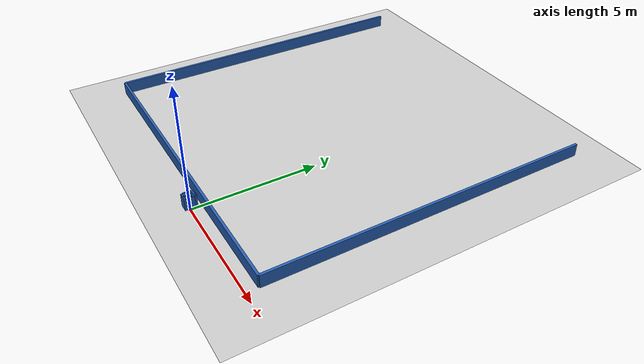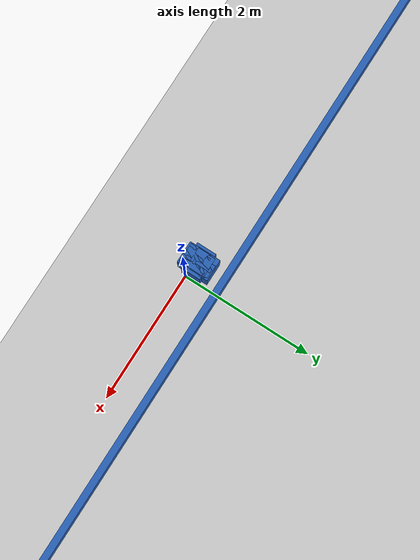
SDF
<?xml version="1.0" ?>
    <sdf version="1.5">
      <world name="default">
        <!-- A global light source -->
        <include>
          <uri>model://sun</uri>
        </include>
        <!-- A ground plane -->
        <include>
          <uri>model://ground_plane</uri>
        </include>

    <model name='libopen_space_final_T2B_61_88'>
      <static>1</static>
      <pose frame=''>-0.225000 0.075000 0.000000 0.000000 0.000000 0.000000</pose>
      <link name='link'>
        <inertial>
          <mass>1</mass>
          <inertia>
            <ixx>0.145833</ixx>
            <ixy>0</ixy>
            <ixz>0</ixz>
            <iyy>0.145833</iyy>
            <iyz>0</iyz>
            <izz>0.125</izz>
          </inertia>
        </inertial>
        <collision name='collision'>
          <geometry>
            <box>
              <size>0.14 0.12 1</size>
            </box>
          </geometry>
          <max_contacts>10</max_contacts>
          <surface>
            <contact>
              <ode/>
            </contact>
            <bounce/>
            <friction>
              <torsional>
                <ode/>
              </torsional>
              <ode/>
            </friction>
          </surface>
        </collision>
        <visual name='visual'>
          <geometry>
            <box>
              <size>0.14 0.12 1</size>
            </box>
          </geometry>
	    <material>
              <ambient>0.152000 0.379000 0.720000 1</ambient>
	      <diffuse>0.152000 0.379000 0.720000 1</diffuse>
          </material>
          <material>
            <script>
              <name>Gazebo/Grey</name>
              <uri>file://media/materials/scripts/gazebo.material</uri>
            </script>
          </material>
        </visual>
        <self_collide>0</self_collide>
        <kinematic>0</kinematic>
        <gravity>1</gravity>
      </link>
      <plugin name='libopen_space_final_T2B_61_88' filename='libopen_space_final_T2B_61_88.so'/>
    </model>

    <model name='libopen_space_final_T2B_83_61'>
      <static>1</static>
      <pose frame=''>-0.225000 0.075000 0.000000 0.000000 0.000000 0.000000</pose>
      <link name='link'>
        <inertial>
          <mass>1</mass>
          <inertia>
            <ixx>0.145833</ixx>
            <ixy>0</ixy>
            <ixz>0</ixz>
            <iyy>0.145833</iyy>
            <iyz>0</iyz>
            <izz>0.125</izz>
          </inertia>
        </inertial>
        <collision name='collision'>
          <geometry>
            <box>
              <size>0.10 0.36 1</size>
            </box>
          </geometry>
          <max_contacts>10</max_contacts>
          <surface>
            <contact>
              <ode/>
            </contact>
            <bounce/>
            <friction>
              <torsional>
                <ode/>
              </torsional>
              <ode/>
            </friction>
          </surface>
        </collision>
        <visual name='visual'>
          <geometry>
            <box>
              <size>0.10 0.36 1</size>
            </box>
          </geometry>
	    <material>
              <ambient>0.152000 0.379000 0.720000 1</ambient>
	      <diffuse>0.152000 0.379000 0.720000 1</diffuse>
          </material>
          <material>
            <script>
              <name>Gazebo/Grey</name>
              <uri>file://media/materials/scripts/gazebo.material</uri>
            </script>
          </material>
        </visual>
        <self_collide>0</self_collide>
        <kinematic>0</kinematic>
        <gravity>1</gravity>
      </link>
      <plugin name='libopen_space_final_T2B_83_61' filename='libopen_space_final_T2B_83_61.so'/>
    </model>

    <model name='libopen_space_final_T2B_90_15'>
      <static>1</static>
      <pose frame=''>-0.225000 0.075000 0.000000 0.000000 0.000000 0.000000</pose>
      <link name='link'>
        <inertial>
          <mass>1</mass>
          <inertia>
            <ixx>0.145833</ixx>
            <ixy>0</ixy>
            <ixz>0</ixz>
            <iyy>0.145833</iyy>
            <iyz>0</iyz>
            <izz>0.125</izz>
          </inertia>
        </inertial>
        <collision name='collision'>
          <geometry>
            <box>
              <size>0.23 0.24 1</size>
            </box>
          </geometry>
          <max_contacts>10</max_contacts>
          <surface>
            <contact>
              <ode/>
            </contact>
            <bounce/>
            <friction>
              <torsional>
                <ode/>
              </torsional>
              <ode/>
            </friction>
          </surface>
        </collision>
        <visual name='visual'>
          <geometry>
            <box>
              <size>0.23 0.24 1</size>
            </box>
          </geometry>
	    <material>
              <ambient>0.152000 0.379000 0.720000 1</ambient>
	      <diffuse>0.152000 0.379000 0.720000 1</diffuse>
          </material>
          <material>
            <script>
              <name>Gazebo/Grey</name>
              <uri>file://media/materials/scripts/gazebo.material</uri>
            </script>
          </material>
        </visual>
        <self_collide>0</self_collide>
        <kinematic>0</kinematic>
        <gravity>1</gravity>
      </link>
      <plugin name='libopen_space_final_T2B_90_15' filename='libopen_space_final_T2B_90_15.so'/>
    </model>

    <model name='libopen_space_final_T2B_134_32'>
      <static>1</static>
      <pose frame=''>-0.225000 0.075000 0.000000 0.000000 0.000000 0.000000</pose>
      <link name='link'>
        <inertial>
          <mass>1</mass>
          <inertia>
            <ixx>0.145833</ixx>
            <ixy>0</ixy>
            <ixz>0</ixz>
            <iyy>0.145833</iyy>
            <iyz>0</iyz>
            <izz>0.125</izz>
          </inertia>
        </inertial>
        <collision name='collision'>
          <geometry>
            <box>
              <size>0.33 0.48 1</size>
            </box>
          </geometry>
          <max_contacts>10</max_contacts>
          <surface>
            <contact>
              <ode/>
            </contact>
            <bounce/>
            <friction>
              <torsional>
                <ode/>
              </torsional>
              <ode/>
            </friction>
          </surface>
        </collision>
        <visual name='visual'>
          <geometry>
            <box>
              <size>0.33 0.48 1</size>
            </box>
          </geometry>
	    <material>
              <ambient>0.152000 0.379000 0.720000 1</ambient>
	      <diffuse>0.152000 0.379000 0.720000 1</diffuse>
          </material>
          <material>
            <script>
              <name>Gazebo/Grey</name>
              <uri>file://media/materials/scripts/gazebo.material</uri>
            </script>
          </material>
        </visual>
        <self_collide>0</self_collide>
        <kinematic>0</kinematic>
        <gravity>1</gravity>
      </link>
      <plugin name='libopen_space_final_T2B_134_32' filename='libopen_space_final_T2B_134_32.so'/>
    </model>

    <model name='libopen_space_final_T2B_92_34'>
      <static>1</static>
      <pose frame=''>-0.225000 0.075000 0.000000 0.000000 0.000000 0.000000</pose>
      <link name='link'>
        <inertial>
          <mass>1</mass>
          <inertia>
            <ixx>0.145833</ixx>
            <ixy>0</ixy>
            <ixz>0</ixz>
            <iyy>0.145833</iyy>
            <iyz>0</iyz>
            <izz>0.125</izz>
          </inertia>
        </inertial>
        <collision name='collision'>
          <geometry>
            <box>
              <size>0.22 0.43 1</size>
            </box>
          </geometry>
          <max_contacts>10</max_contacts>
          <surface>
            <contact>
              <ode/>
            </contact>
            <bounce/>
            <friction>
              <torsional>
                <ode/>
              </torsional>
              <ode/>
            </friction>
          </surface>
        </collision>
        <visual name='visual'>
          <geometry>
            <box>
              <size>0.22 0.43 1</size>
            </box>
          </geometry>
	    <material>
              <ambient>0.152000 0.379000 0.720000 1</ambient>
	      <diffuse>0.152000 0.379000 0.720000 1</diffuse>
          </material>
          <material>
            <script>
              <name>Gazebo/Grey</name>
              <uri>file://media/materials/scripts/gazebo.material</uri>
            </script>
          </material>
        </visual>
        <self_collide>0</self_collide>
        <kinematic>0</kinematic>
        <gravity>1</gravity>
      </link>
      <plugin name='libopen_space_final_T2B_92_34' filename='libopen_space_final_T2B_92_34.so'/>
    </model>

    <model name='libopen_space_final_T2B_56_75'>
      <static>1</static>
      <pose frame=''>-0.225000 0.075000 0.000000 0.000000 0.000000 0.000000</pose>
      <link name='link'>
        <inertial>
          <mass>1</mass>
          <inertia>
            <ixx>0.145833</ixx>
            <ixy>0</ixy>
            <ixz>0</ixz>
            <iyy>0.145833</iyy>
            <iyz>0</iyz>
            <izz>0.125</izz>
          </inertia>
        </inertial>
        <collision name='collision'>
          <geometry>
            <box>
              <size>0.11 0.42 1</size>
            </box>
          </geometry>
          <max_contacts>10</max_contacts>
          <surface>
            <contact>
              <ode/>
            </contact>
            <bounce/>
            <friction>
              <torsional>
                <ode/>
              </torsional>
              <ode/>
            </friction>
          </surface>
        </collision>
        <visual name='visual'>
          <geometry>
            <box>
              <size>0.11 0.42 1</size>
            </box>
          </geometry>
	    <material>
              <ambient>0.152000 0.379000 0.720000 1</ambient>
	      <diffuse>0.152000 0.379000 0.720000 1</diffuse>
          </material>
          <material>
            <script>
              <name>Gazebo/Grey</name>
              <uri>file://media/materials/scripts/gazebo.material</uri>
            </script>
          </material>
        </visual>
        <self_collide>0</self_collide>
        <kinematic>0</kinematic>
        <gravity>1</gravity>
      </link>
      <plugin name='libopen_space_final_T2B_56_75' filename='libopen_space_final_T2B_56_75.so'/>
    </model>

    <model name='libopen_space_final_T2B_73_39'>
      <static>1</static>
      <pose frame=''>-0.225000 0.075000 0.000000 0.000000 0.000000 0.000000</pose>
      <link name='link'>
        <inertial>
          <mass>1</mass>
          <inertia>
            <ixx>0.145833</ixx>
            <ixy>0</ixy>
            <ixz>0</ixz>
            <iyy>0.145833</iyy>
            <iyz>0</iyz>
            <izz>0.125</izz>
          </inertia>
        </inertial>
        <collision name='collision'>
          <geometry>
            <box>
              <size>0.29 0.35 1</size>
            </box>
          </geometry>
          <max_contacts>10</max_contacts>
          <surface>
            <contact>
              <ode/>
            </contact>
            <bounce/>
            <friction>
              <torsional>
                <ode/>
              </torsional>
              <ode/>
            </friction>
          </surface>
        </collision>
        <visual name='visual'>
          <geometry>
            <box>
              <size>0.29 0.35 1</size>
            </box>
          </geometry>
	    <material>
              <ambient>0.152000 0.379000 0.720000 1</ambient>
	      <diffuse>0.152000 0.379000 0.720000 1</diffuse>
          </material>
          <material>
            <script>
              <name>Gazebo/Grey</name>
              <uri>file://media/materials/scripts/gazebo.material</uri>
            </script>
          </material>
        </visual>
        <self_collide>0</self_collide>
        <kinematic>0</kinematic>
        <gravity>1</gravity>
      </link>
      <plugin name='libopen_space_final_T2B_73_39' filename='libopen_space_final_T2B_73_39.so'/>
    </model>

    <model name='libopen_space_final_T2B_115_24'>
      <static>1</static>
      <pose frame=''>-0.225000 0.075000 0.000000 0.000000 0.000000 0.000000</pose>
      <link name='link'>
        <inertial>
          <mass>1</mass>
          <inertia>
            <ixx>0.145833</ixx>
            <ixy>0</ixy>
            <ixz>0</ixz>
            <iyy>0.145833</iyy>
            <iyz>0</iyz>
            <izz>0.125</izz>
          </inertia>
        </inertial>
        <collision name='collision'>
          <geometry>
            <box>
              <size>0.31 0.20 1</size>
            </box>
          </geometry>
          <max_contacts>10</max_contacts>
          <surface>
            <contact>
              <ode/>
            </contact>
            <bounce/>
            <friction>
              <torsional>
                <ode/>
              </torsional>
              <ode/>
            </friction>
          </surface>
        </collision>
        <visual name='visual'>
          <geometry>
            <box>
              <size>0.31 0.20 1</size>
            </box>
          </geometry>
	    <material>
              <ambient>0.152000 0.379000 0.720000 1</ambient>
	      <diffuse>0.152000 0.379000 0.720000 1</diffuse>
          </material>
          <material>
            <script>
              <name>Gazebo/Grey</name>
              <uri>file://media/materials/scripts/gazebo.material</uri>
            </script>
          </material>
        </visual>
        <self_collide>0</self_collide>
        <kinematic>0</kinematic>
        <gravity>1</gravity>
      </link>
      <plugin name='libopen_space_final_T2B_115_24' filename='libopen_space_final_T2B_115_24.so'/>
    </model>

    <model name='libopen_space_final_T2B_87_56'>
      <static>1</static>
      <pose frame=''>-0.225000 0.075000 0.000000 0.000000 0.000000 0.000000</pose>
      <link name='link'>
        <inertial>
          <mass>1</mass>
          <inertia>
            <ixx>0.145833</ixx>
            <ixy>0</ixy>
            <ixz>0</ixz>
            <iyy>0.145833</iyy>
            <iyz>0</iyz>
            <izz>0.125</izz>
          </inertia>
        </inertial>
        <collision name='collision'>
          <geometry>
            <box>
              <size>0.13 0.46 1</size>
            </box>
          </geometry>
          <max_contacts>10</max_contacts>
          <surface>
            <contact>
              <ode/>
            </contact>
            <bounce/>
            <friction>
              <torsional>
                <ode/>
              </torsional>
              <ode/>
            </friction>
          </surface>
        </collision>
        <visual name='visual'>
          <geometry>
            <box>
              <size>0.13 0.46 1</size>
            </box>
          </geometry>
	    <material>
              <ambient>0.152000 0.379000 0.720000 1</ambient>
	      <diffuse>0.152000 0.379000 0.720000 1</diffuse>
          </material>
          <material>
            <script>
              <name>Gazebo/Grey</name>
              <uri>file://media/materials/scripts/gazebo.material</uri>
            </script>
          </material>
        </visual>
        <self_collide>0</self_collide>
        <kinematic>0</kinematic>
        <gravity>1</gravity>
      </link>
      <plugin name='libopen_space_final_T2B_87_56' filename='libopen_space_final_T2B_87_56.so'/>
    </model>

    <model name='libopen_space_final_T2B_126_78'>
      <static>1</static>
      <pose frame=''>-0.225000 0.075000 0.000000 0.000000 0.000000 0.000000</pose>
      <link name='link'>
        <inertial>
          <mass>1</mass>
          <inertia>
            <ixx>0.145833</ixx>
            <ixy>0</ixy>
            <ixz>0</ixz>
            <iyy>0.145833</iyy>
            <iyz>0</iyz>
            <izz>0.125</izz>
          </inertia>
        </inertial>
        <collision name='collision'>
          <geometry>
            <box>
              <size>0.30 0.43 1</size>
            </box>
          </geometry>
          <max_contacts>10</max_contacts>
          <surface>
            <contact>
              <ode/>
            </contact>
            <bounce/>
            <friction>
              <torsional>
                <ode/>
              </torsional>
              <ode/>
            </friction>
          </surface>
        </collision>
        <visual name='visual'>
          <geometry>
            <box>
              <size>0.30 0.43 1</size>
            </box>
          </geometry>
	    <material>
              <ambient>0.152000 0.379000 0.720000 1</ambient>
	      <diffuse>0.152000 0.379000 0.720000 1</diffuse>
          </material>
          <material>
            <script>
              <name>Gazebo/Grey</name>
              <uri>file://media/materials/scripts/gazebo.material</uri>
            </script>
          </material>
        </visual>
        <self_collide>0</self_collide>
        <kinematic>0</kinematic>
        <gravity>1</gravity>
      </link>
      <plugin name='libopen_space_final_T2B_126_78' filename='libopen_space_final_T2B_126_78.so'/>
    </model>

    <model name='libopen_space_final_T2B_125_67'>
      <static>1</static>
      <pose frame=''>-0.225000 0.075000 0.000000 0.000000 0.000000 0.000000</pose>
      <link name='link'>
        <inertial>
          <mass>1</mass>
          <inertia>
            <ixx>0.145833</ixx>
            <ixy>0</ixy>
            <ixz>0</ixz>
            <iyy>0.145833</iyy>
            <iyz>0</iyz>
            <izz>0.125</izz>
          </inertia>
        </inertial>
        <collision name='collision'>
          <geometry>
            <box>
              <size>0.27 0.45 1</size>
            </box>
          </geometry>
          <max_contacts>10</max_contacts>
          <surface>
            <contact>
              <ode/>
            </contact>
            <bounce/>
            <friction>
              <torsional>
                <ode/>
              </torsional>
              <ode/>
            </friction>
          </surface>
        </collision>
        <visual name='visual'>
          <geometry>
            <box>
              <size>0.27 0.45 1</size>
            </box>
          </geometry>
	    <material>
              <ambient>0.152000 0.379000 0.720000 1</ambient>
	      <diffuse>0.152000 0.379000 0.720000 1</diffuse>
          </material>
          <material>
            <script>
              <name>Gazebo/Grey</name>
              <uri>file://media/materials/scripts/gazebo.material</uri>
            </script>
          </material>
        </visual>
        <self_collide>0</self_collide>
        <kinematic>0</kinematic>
        <gravity>1</gravity>
      </link>
      <plugin name='libopen_space_final_T2B_125_67' filename='libopen_space_final_T2B_125_67.so'/>
    </model>

    <model name='libopen_space_final_T2B_126_41'>
      <static>1</static>
      <pose frame=''>-0.225000 0.075000 0.000000 0.000000 0.000000 0.000000</pose>
      <link name='link'>
        <inertial>
          <mass>1</mass>
          <inertia>
            <ixx>0.145833</ixx>
            <ixy>0</ixy>
            <ixz>0</ixz>
            <iyy>0.145833</iyy>
            <iyz>0</iyz>
            <izz>0.125</izz>
          </inertia>
        </inertial>
        <collision name='collision'>
          <geometry>
            <box>
              <size>0.26 0.24 1</size>
            </box>
          </geometry>
          <max_contacts>10</max_contacts>
          <surface>
            <contact>
              <ode/>
            </contact>
            <bounce/>
            <friction>
              <torsional>
                <ode/>
              </torsional>
              <ode/>
            </friction>
          </surface>
        </collision>
        <visual name='visual'>
          <geometry>
            <box>
              <size>0.26 0.24 1</size>
            </box>
          </geometry>
	    <material>
              <ambient>0.152000 0.379000 0.720000 1</ambient>
	      <diffuse>0.152000 0.379000 0.720000 1</diffuse>
          </material>
          <material>
            <script>
              <name>Gazebo/Grey</name>
              <uri>file://media/materials/scripts/gazebo.material</uri>
            </script>
          </material>
        </visual>
        <self_collide>0</self_collide>
        <kinematic>0</kinematic>
        <gravity>1</gravity>
      </link>
      <plugin name='libopen_space_final_T2B_126_41' filename='libopen_space_final_T2B_126_41.so'/>
    </model>

    <model name='libopen_space_final_T2B_118_43'>
      <static>1</static>
      <pose frame=''>-0.225000 0.075000 0.000000 0.000000 0.000000 0.000000</pose>
      <link name='link'>
        <inertial>
          <mass>1</mass>
          <inertia>
            <ixx>0.145833</ixx>
            <ixy>0</ixy>
            <ixz>0</ixz>
            <iyy>0.145833</iyy>
            <iyz>0</iyz>
            <izz>0.125</izz>
          </inertia>
        </inertial>
        <collision name='collision'>
          <geometry>
            <box>
              <size>0.41 0.30 1</size>
            </box>
          </geometry>
          <max_contacts>10</max_contacts>
          <surface>
            <contact>
              <ode/>
            </contact>
            <bounce/>
            <friction>
              <torsional>
                <ode/>
              </torsional>
              <ode/>
            </friction>
          </surface>
        </collision>
        <visual name='visual'>
          <geometry>
            <box>
              <size>0.41 0.30 1</size>
            </box>
          </geometry>
	    <material>
              <ambient>0.152000 0.379000 0.720000 1</ambient>
	      <diffuse>0.152000 0.379000 0.720000 1</diffuse>
          </material>
          <material>
            <script>
              <name>Gazebo/Grey</name>
              <uri>file://media/materials/scripts/gazebo.material</uri>
            </script>
          </material>
        </visual>
        <self_collide>0</self_collide>
        <kinematic>0</kinematic>
        <gravity>1</gravity>
      </link>
      <plugin name='libopen_space_final_T2B_118_43' filename='libopen_space_final_T2B_118_43.so'/>
    </model>

        <model name='bottom_wall'>
          <static>1</static>
          <pose frame=''>-2.25 0.5 0.000000 0.000000 0.000000 1.57079632</pose>
          <link name='link'>
            <inertial>
            <mass>1</mass>
            <inertia>
              <ixx>0.145833</ixx>
              <ixy>0</ixy>
              <ixz>0</ixz>
              <iyy>0.145833</iyy>
              <iyz>0</iyz>
              <izz>0.125</izz>
            </inertia>
            </inertial>
            <collision name='collision'>
            <geometry>
              <box>
              <size>0.1 13.5 1</size>
              </box>
            </geometry>
            <max_contacts>10</max_contacts>
            <surface>
              <contact>
              <ode/>
              </contact>
              <bounce/>
              <friction>
              <torsional>
                <ode/>
              </torsional>
              <ode/>
              </friction>
            </surface>
            </collision>
            <visual name='visual'>
            <geometry>
              <box>
              <size>0.1 13.5 1</size>
              </box>
            </geometry>
            <material>
              <ambient>0.152000 0.379000 0.720000 1</ambient>
            <diffuse>0.152000 0.379000 0.720000 1</diffuse>
            </material>
            <material>
              <script>
              <name>Gazebo/Grey</name>
              <uri>file://media/materials/scripts/gazebo.material</uri>
              </script>
            </material>
            </visual>
            <self_collide>0</self_collide>
            <kinematic>0</kinematic>
            <gravity>1</gravity>
          </link>
        </model>

        <model name='left_wall'>
          <static>1</static>
          <pose frame=''>-9 7.25 0.000000 0.000000 0.000000 0.000000</pose>
          <link name='link'>
            <inertial>
            <mass>1</mass>
            <inertia>
              <ixx>0.145833</ixx>
              <ixy>0</ixy>
              <ixz>0</ixz>
              <iyy>0.145833</iyy>
              <iyz>0</iyz>
              <izz>0.125</izz>
            </inertia>
            </inertial>
            <collision name='collision'>
            <geometry>
              <box>
              <size>0.1 13.5 1</size>
              </box>
            </geometry>
            <max_contacts>10</max_contacts>
            <surface>
              <contact>
              <ode/>
              </contact>
              <bounce/>
              <friction>
              <torsional>
                <ode/>
              </torsional>
              <ode/>
              </friction>
            </surface>
            </collision>
            <visual name='visual'>
            <geometry>
              <box>
              <size>0.1 13.5 1</size>
              </box>
            </geometry>
            <material>
              <ambient>0.152000 0.379000 0.720000 1</ambient>
            <diffuse>0.152000 0.379000 0.720000 1</diffuse>
            </material>
            <material>
              <script>
              <name>Gazebo/Grey</name>
              <uri>file://media/materials/scripts/gazebo.material</uri>
              </script>
            </material>
            </visual>
            <self_collide>0</self_collide>
            <kinematic>0</kinematic>
            <gravity>1</gravity>
          </link>
        </model>

        <model name='right_wall'>
          <static>1</static>
          <pose frame=''>4.5 7.25 0.000000 0.000000 0.000000 0.000000</pose>
          <link name='link'>
            <inertial>
            <mass>1</mass>
            <inertia>
              <ixx>0.145833</ixx>
              <ixy>0</ixy>
              <ixz>0</ixz>
              <iyy>0.145833</iyy>
              <iyz>0</iyz>
              <izz>0.125</izz>
            </inertia>
            </inertial>
            <collision name='collision'>
            <geometry>
              <box>
              <size>0.1 13.5 1</size>
              </box>
            </geometry>
            <max_contacts>10</max_contacts>
            <surface>
              <contact>
              <ode/>
              </contact>
              <bounce/>
              <friction>
              <torsional>
                <ode/>
              </torsional>
              <ode/>
              </friction>
            </surface>
            </collision>
            <visual name='visual'>
            <geometry>
              <box>
              <size>0.1 13.5 1</size>
              </box>
            </geometry>
            <material>
              <ambient>0.152000 0.379000 0.720000 1</ambient>
            <diffuse>0.152000 0.379000 0.720000 1</diffuse>
            </material>
            <material>
              <script>
              <name>Gazebo/Grey</name>
              <uri>file://media/materials/scripts/gazebo.material</uri>
              </script>
            </material>
            </visual>
            <self_collide>0</self_collide>
            <kinematic>0</kinematic>
            <gravity>1</gravity>
          </link>
        </model>

      </world>
    </sdf>"
